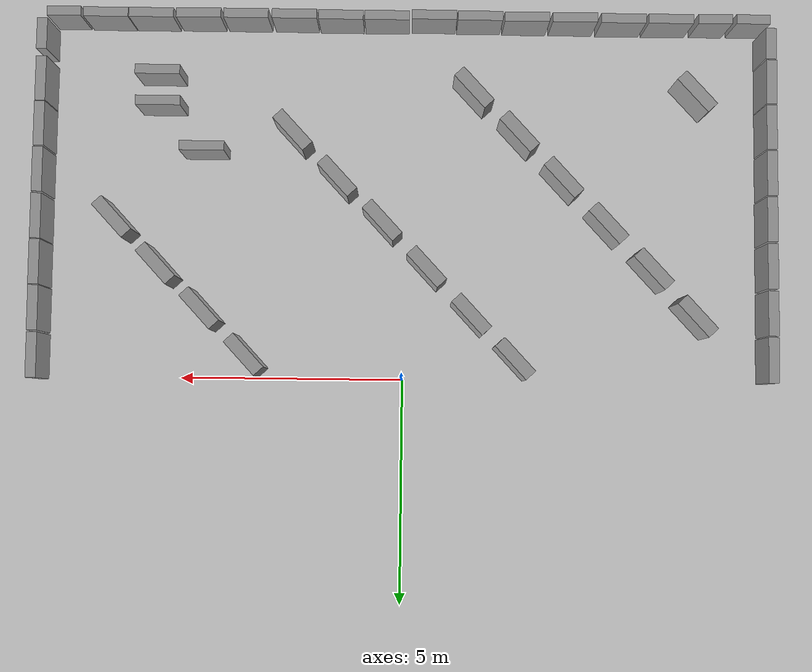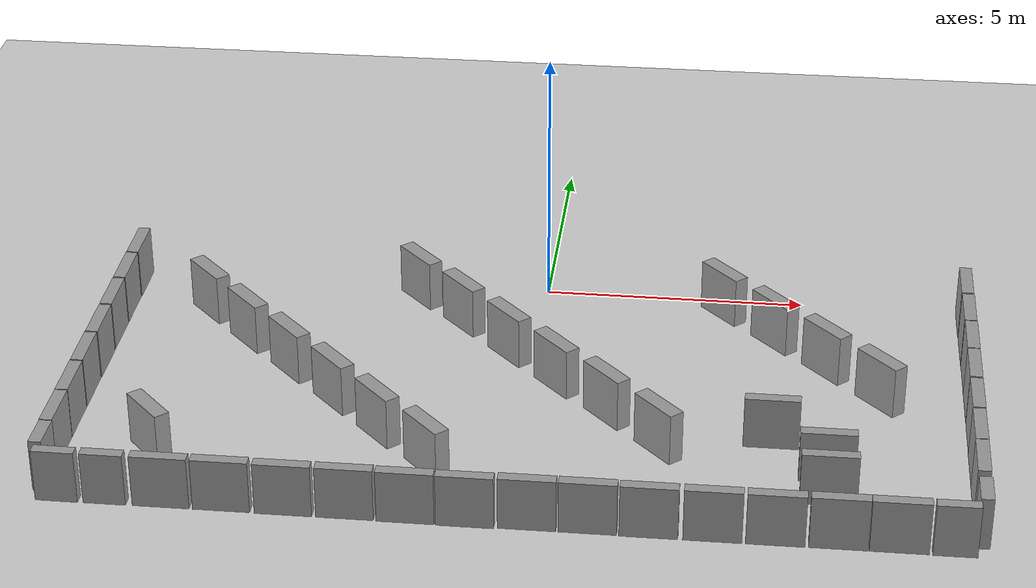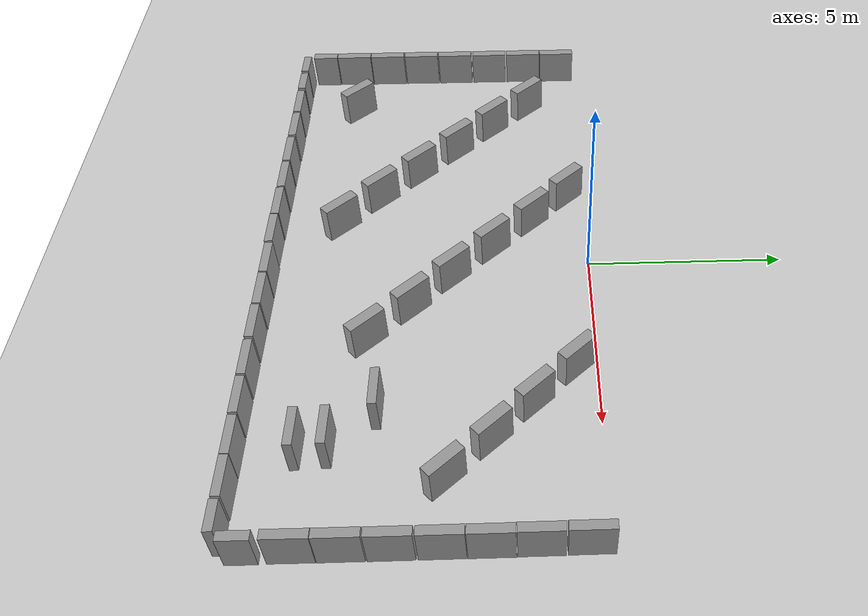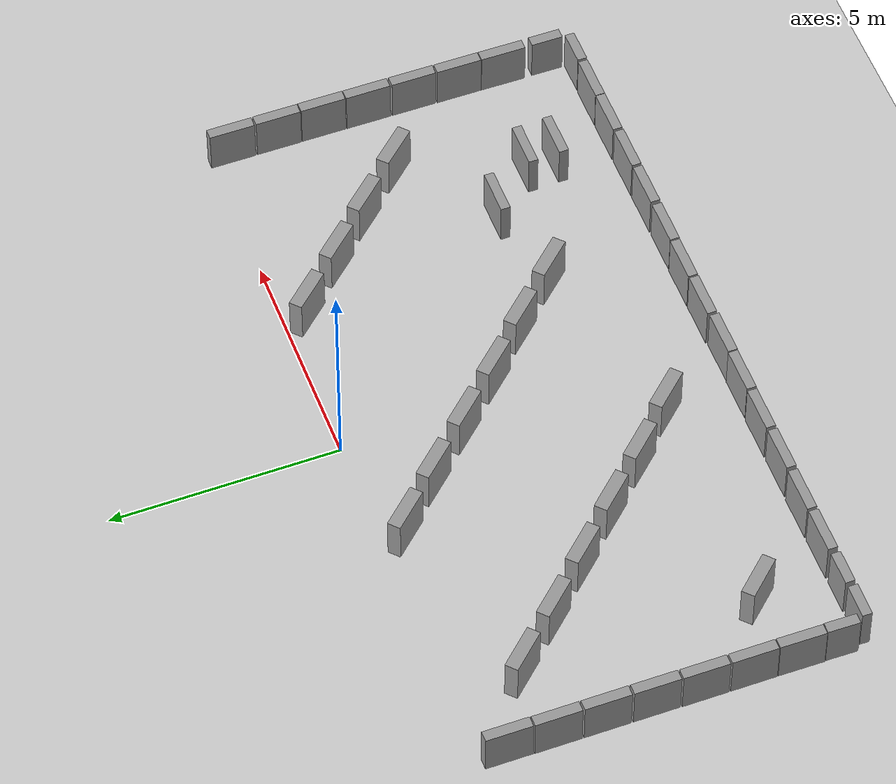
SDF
<sdf version="1.6">
 <world name="default">
  <model name="ground_plane">
   <static>1</static>
   <static>1</static>
   <link name="link">
    <collision name="collision">
     <geometry><plane><normal>0 0 1</normal><size>100 100</size></plane></geometry>
     <surface><friction><ode><mu>100</mu><mu2>50</mu2></ode></friction></surface>
    </collision>
    <visual name="visual">
     <cast_shadows>0</cast_shadows>
     <geometry><plane><normal>0 0 1</normal><size>100 100</size></plane></geometry>
     <material>
      <script><uri>file://media/materials/scripts/gazebo.material</uri><name>Gazebo/Grey</name></script>
     </material>
    </visual>
   </link>
  </model>
  <model name="unit_box_0_clone_7">
   <pose>8.11276 -0.44932 0.5 -1e-06 -1e-06 0.000192</pose>
   <link name="link">
    <inertial>
     <mass>1</mass>
     <inertia>
      <ixx>0.166667</ixx>
      <ixy>0</ixy>
      <ixz>0</ixz>
      <iyy>0.166667</iyy>
      <iyz>0</iyz>
      <izz>0.166667</izz>
     </inertia>
    </inertial>
    <collision name="collision"><geometry><box><size>0.230819 1 1</size></box></geometry></collision>
    <visual name="visual">
     <geometry><box><size>0.230819 1 1</size></box></geometry>
     <material>
      <script><name>Gazebo/Grey</name><uri>file://media/materials/scripts/gazebo.material</uri></script>
     </material>
    </visual>
   </link>
  </model>
  <model name="unit_box_0_clone_8">
   <pose>8.11912 -1.48629 0.5 -1e-06 -1e-06 0.000192</pose>
   <link name="link">
    <inertial>
     <mass>1</mass>
     <inertia>
      <ixx>0.166667</ixx>
      <ixy>0</ixy>
      <ixz>0</ixz>
      <iyy>0.166667</iyy>
      <iyz>0</iyz>
      <izz>0.166667</izz>
     </inertia>
    </inertial>
    <collision name="collision"><geometry><box><size>0.230819 1 1</size></box></geometry></collision>
    <visual name="visual">
     <geometry><box><size>0.230819 1 1</size></box></geometry>
     <material>
      <script><name>Gazebo/Grey</name><uri>file://media/materials/scripts/gazebo.material</uri></script>
     </material>
    </visual>
   </link>
  </model>
  <model name="unit_box_0_clone_9">
   <pose>8.12548 -2.5042 0.5 -1e-06 -1e-06 0.000192</pose>
   <link name="link">
    <inertial>
     <mass>1</mass>
     <inertia>
      <ixx>0.166667</ixx>
      <ixy>0</ixy>
      <ixz>0</ixz>
      <iyy>0.166667</iyy>
      <iyz>0</iyz>
      <izz>0.166667</izz>
     </inertia>
    </inertial>
    <collision name="collision"><geometry><box><size>0.230819 1 1</size></box></geometry></collision>
    <visual name="visual">
     <geometry><box><size>0.230819 1 1</size></box></geometry>
     <material>
      <script><name>Gazebo/Grey</name><uri>file://media/materials/scripts/gazebo.material</uri></script>
     </material>
    </visual>
   </link>
  </model>
  <model name="unit_box_0_clone_10">
   <pose>8.12331 -3.52223 0.5 -1e-06 -1e-06 0.000192</pose>
   <link name="link">
    <inertial>
     <mass>1</mass>
     <inertia>
      <ixx>0.166667</ixx>
      <ixy>0</ixy>
      <ixz>0</ixz>
      <iyy>0.166667</iyy>
      <iyz>0</iyz>
      <izz>0.166667</izz>
     </inertia>
    </inertial>
    <collision name="collision"><geometry><box><size>0.230819 1 1</size></box></geometry></collision>
    <visual name="visual">
     <geometry><box><size>0.230819 1 1</size></box></geometry>
     <material>
      <script><name>Gazebo/Grey</name><uri>file://media/materials/scripts/gazebo.material</uri></script>
     </material>
    </visual>
   </link>
  </model>
  <model name="unit_box_0_clone_11">
   <pose>8.1233 -4.56316 0.5 -1e-06 -1e-06 0.000192</pose>
   <link name="link">
    <inertial>
     <mass>1</mass>
     <inertia>
      <ixx>0.166667</ixx>
      <ixy>0</ixy>
      <ixz>0</ixz>
      <iyy>0.166667</iyy>
      <iyz>0</iyz>
      <izz>0.166667</izz>
     </inertia>
    </inertial>
    <collision name="collision"><geometry><box><size>0.230819 1 1</size></box></geometry></collision>
    <visual name="visual">
     <geometry><box><size>0.230819 1 1</size></box></geometry>
     <material>
      <script><name>Gazebo/Grey</name><uri>file://media/materials/scripts/gazebo.material</uri></script>
     </material>
    </visual>
   </link>
  </model>
  <model name="unit_box_0_clone_12">
   <pose>8.11815 -5.59377 0.5 -1e-06 -1e-06 0.000192</pose>
   <link name="link">
    <inertial>
     <mass>1</mass>
     <inertia>
      <ixx>0.166667</ixx>
      <ixy>0</ixy>
      <ixz>0</ixz>
      <iyy>0.166667</iyy>
      <iyz>0</iyz>
      <izz>0.166667</izz>
     </inertia>
    </inertial>
    <collision name="collision"><geometry><box><size>0.230819 1 1</size></box></geometry></collision>
    <visual name="visual">
     <geometry><box><size>0.230819 1 1</size></box></geometry>
     <material>
      <script><name>Gazebo/Grey</name><uri>file://media/materials/scripts/gazebo.material</uri></script>
     </material>
    </visual>
   </link>
  </model>
  <model name="unit_box_0_clone_13">
   <pose>8.11333 -6.60776 0.5 0 -0 -0.005474</pose>
   <link name="link">
    <inertial>
     <mass>1</mass>
     <inertia>
      <ixx>0.166667</ixx>
      <ixy>0</ixy>
      <ixz>0</ixz>
      <iyy>0.166667</iyy>
      <iyz>0</iyz>
      <izz>0.166667</izz>
     </inertia>
    </inertial>
    <collision name="collision"><geometry><box><size>0.230819 1 1</size></box></geometry></collision>
    <visual name="visual">
     <geometry><box><size>0.230819 1 1</size></box></geometry>
     <material>
      <script><name>Gazebo/Grey</name><uri>file://media/materials/scripts/gazebo.material</uri></script>
     </material>
    </visual>
   </link>
  </model>
  <model name="unit_box_clone_15_clone_0">
   <pose>6.71207 -8.13139 0.5 0 -0 0.00022</pose>
   <link name="link">
    <inertial>
     <mass>1</mass>
     <inertia>
      <ixx>0.166667</ixx>
      <ixy>0</ixy>
      <ixz>0</ixz>
      <iyy>0.166667</iyy>
      <iyz>0</iyz>
      <izz>0.166667</izz>
     </inertia>
    </inertial>
    <collision name="collision"><geometry><box><size>1 0.210541 1</size></box></geometry></collision>
    <visual name="visual">
     <geometry><box><size>1 0.210541 1</size></box></geometry>
     <material>
      <script><name>Gazebo/Grey</name><uri>file://media/materials/scripts/gazebo.material</uri></script>
     </material>
    </visual>
   </link>
  </model>
  <model name="unit_box_clone_15_clone_1">
   <pose>5.69715 -8.13138 0.5 0 -0 0.00022</pose>
   <link name="link">
    <inertial>
     <mass>1</mass>
     <inertia>
      <ixx>0.166667</ixx>
      <ixy>0</ixy>
      <ixz>0</ixz>
      <iyy>0.166667</iyy>
      <iyz>0</iyz>
      <izz>0.166667</izz>
     </inertia>
    </inertial>
    <collision name="collision"><geometry><box><size>1 0.210541 1</size></box></geometry></collision>
    <visual name="visual">
     <geometry><box><size>1 0.210541 1</size></box></geometry>
     <material>
      <script><name>Gazebo/Grey</name><uri>file://media/materials/scripts/gazebo.material</uri></script>
     </material>
    </visual>
   </link>
  </model>
  <model name="unit_box_clone_15_clone_2">
   <pose>4.63881 -8.13757 0.5 0 -0 0.00022</pose>
   <link name="link">
    <inertial>
     <mass>1</mass>
     <inertia>
      <ixx>0.166667</ixx>
      <ixy>0</ixy>
      <ixz>0</ixz>
      <iyy>0.166667</iyy>
      <iyz>0</iyz>
      <izz>0.166667</izz>
     </inertia>
    </inertial>
    <collision name="collision"><geometry><box><size>1 0.210541 1</size></box></geometry></collision>
    <visual name="visual">
     <geometry><box><size>1 0.210541 1</size></box></geometry>
     <material>
      <script><name>Gazebo/Grey</name><uri>file://media/materials/scripts/gazebo.material</uri></script>
     </material>
    </visual>
   </link>
  </model>
  <model name="unit_box_clone_15_clone_3">
   <pose>3.57975 -8.13757 0.5 0 -0 0.00022</pose>
   <link name="link">
    <inertial>
     <mass>1</mass>
     <inertia>
      <ixx>0.166667</ixx>
      <ixy>0</ixy>
      <ixz>0</ixz>
      <iyy>0.166667</iyy>
      <iyz>0</iyz>
      <izz>0.166667</izz>
     </inertia>
    </inertial>
    <collision name="collision"><geometry><box><size>1 0.210541 1</size></box></geometry></collision>
    <visual name="visual">
     <geometry><box><size>1 0.210541 1</size></box></geometry>
     <material>
      <script><name>Gazebo/Grey</name><uri>file://media/materials/scripts/gazebo.material</uri></script>
     </material>
    </visual>
   </link>
  </model>
  <model name="unit_box_clone_15_clone_4">
   <pose>2.49815 -8.13756 0.5 0 -0 0.00022</pose>
   <link name="link">
    <inertial>
     <mass>1</mass>
     <inertia>
      <ixx>0.166667</ixx>
      <ixy>0</ixy>
      <ixz>0</ixz>
      <iyy>0.166667</iyy>
      <iyz>0</iyz>
      <izz>0.166667</izz>
     </inertia>
    </inertial>
    <collision name="collision"><geometry><box><size>1 0.210541 1</size></box></geometry></collision>
    <visual name="visual">
     <geometry><box><size>1 0.210541 1</size></box></geometry>
     <material>
      <script><name>Gazebo/Grey</name><uri>file://media/materials/scripts/gazebo.material</uri></script>
     </material>
    </visual>
   </link>
  </model>
  <model name="unit_box_clone_15_clone_5">
   <pose>1.46162 -8.12628 0.5 0 -0 0.00022</pose>
   <link name="link">
    <inertial>
     <mass>1</mass>
     <inertia>
      <ixx>0.166667</ixx>
      <ixy>0</ixy>
      <ixz>0</ixz>
      <iyy>0.166667</iyy>
      <iyz>0</iyz>
      <izz>0.166667</izz>
     </inertia>
    </inertial>
    <collision name="collision"><geometry><box><size>1 0.210541 1</size></box></geometry></collision>
    <visual name="visual">
     <geometry><box><size>1 0.210541 1</size></box></geometry>
     <material>
      <script><name>Gazebo/Grey</name><uri>file://media/materials/scripts/gazebo.material</uri></script>
     </material>
    </visual>
   </link>
  </model>
  <model name="unit_box_clone_15_clone_6">
   <pose>0.425088 -8.12627 0.5 0 -0 0.00022</pose>
   <link name="link">
    <inertial>
     <mass>1</mass>
     <inertia>
      <ixx>0.166667</ixx>
      <ixy>0</ixy>
      <ixz>0</ixz>
      <iyy>0.166667</iyy>
      <iyz>0</iyz>
      <izz>0.166667</izz>
     </inertia>
    </inertial>
    <collision name="collision"><geometry><box><size>1 0.210541 1</size></box></geometry></collision>
    <visual name="visual">
     <geometry><box><size>1 0.210541 1</size></box></geometry>
     <material>
      <script><name>Gazebo/Grey</name><uri>file://media/materials/scripts/gazebo.material</uri></script>
     </material>
    </visual>
   </link>
  </model>
  <model name="unit_box_clone_15_clone_7">
   <pose>-0.633974 -8.14883 0.5 0 -0 0.00022</pose>
   <link name="link">
    <inertial>
     <mass>1</mass>
     <inertia>
      <ixx>0.166667</ixx>
      <ixy>0</ixy>
      <ixz>0</ixz>
      <iyy>0.166667</iyy>
      <iyz>0</iyz>
      <izz>0.166667</izz>
     </inertia>
    </inertial>
    <collision name="collision"><geometry><box><size>1 0.210541 1</size></box></geometry></collision>
    <visual name="visual">
     <geometry><box><size>1 0.210541 1</size></box></geometry>
     <material>
      <script><name>Gazebo/Grey</name><uri>file://media/materials/scripts/gazebo.material</uri></script>
     </material>
    </visual>
   </link>
  </model>
  <model name="unit_box_clone_15_clone_8">
   <pose>-1.65923 -8.13754 0.5 0 -0 0.00022</pose>
   <link name="link">
    <inertial>
     <mass>1</mass>
     <inertia>
      <ixx>0.166667</ixx>
      <ixy>0</ixy>
      <ixz>0</ixz>
      <iyy>0.166667</iyy>
      <iyz>0</iyz>
      <izz>0.166667</izz>
     </inertia>
    </inertial>
    <collision name="collision"><geometry><box><size>1 0.210541 1</size></box></geometry></collision>
    <visual name="visual">
     <geometry><box><size>1 0.210541 1</size></box></geometry>
     <material>
      <script><name>Gazebo/Grey</name><uri>file://media/materials/scripts/gazebo.material</uri></script>
     </material>
    </visual>
   </link>
  </model>
  <model name="unit_box_clone_15_clone_9">
   <pose>-2.70703 -8.1263 0.5 0 -0 0.00022</pose>
   <link name="link">
    <inertial>
     <mass>1</mass>
     <inertia>
      <ixx>0.166667</ixx>
      <ixy>0</ixy>
      <ixz>0</ixz>
      <iyy>0.166667</iyy>
      <iyz>0</iyz>
      <izz>0.166667</izz>
     </inertia>
    </inertial>
    <collision name="collision"><geometry><box><size>1 0.210541 1</size></box></geometry></collision>
    <visual name="visual">
     <geometry><box><size>1 0.210541 1</size></box></geometry>
     <material>
      <script><name>Gazebo/Grey</name><uri>file://media/materials/scripts/gazebo.material</uri></script>
     </material>
    </visual>
   </link>
  </model>
  <model name="unit_box_clone_15_clone_10">
   <pose>-3.77736 -8.12628 0.5 0 -0 0.00022</pose>
   <link name="link">
    <inertial>
     <mass>1</mass>
     <inertia>
      <ixx>0.166667</ixx>
      <ixy>0</ixy>
      <ixz>0</ixz>
      <iyy>0.166667</iyy>
      <iyz>0</iyz>
      <izz>0.166667</izz>
     </inertia>
    </inertial>
    <collision name="collision"><geometry><box><size>1 0.210541 1</size></box></geometry></collision>
    <visual name="visual">
     <geometry><box><size>1 0.210541 1</size></box></geometry>
     <material>
      <script><name>Gazebo/Grey</name><uri>file://media/materials/scripts/gazebo.material</uri></script>
     </material>
    </visual>
   </link>
  </model>
  <model name="unit_box_clone_15_clone_11">
   <pose>-4.85896 -8.11502 0.5 0 -0 0.00022</pose>
   <link name="link">
    <inertial>
     <mass>1</mass>
     <inertia>
      <ixx>0.166667</ixx>
      <ixy>0</ixy>
      <ixz>0</ixz>
      <iyy>0.166667</iyy>
      <iyz>0</iyz>
      <izz>0.166667</izz>
     </inertia>
    </inertial>
    <collision name="collision"><geometry><box><size>1 0.210541 1</size></box></geometry></collision>
    <visual name="visual">
     <geometry><box><size>1 0.210541 1</size></box></geometry>
     <material>
      <script><name>Gazebo/Grey</name><uri>file://media/materials/scripts/gazebo.material</uri></script>
     </material>
    </visual>
   </link>
  </model>
  <model name="unit_box_clone_15_clone_12">
   <pose>-5.91802 -8.11501 0.5 0 -0 0.00022</pose>
   <link name="link">
    <inertial>
     <mass>1</mass>
     <inertia>
      <ixx>0.166667</ixx>
      <ixy>0</ixy>
      <ixz>0</ixz>
      <iyy>0.166667</iyy>
      <iyz>0</iyz>
      <izz>0.166667</izz>
     </inertia>
    </inertial>
    <collision name="collision"><geometry><box><size>1 0.210541 1</size></box></geometry></collision>
    <visual name="visual">
     <geometry><box><size>1 0.210541 1</size></box></geometry>
     <material>
      <script><name>Gazebo/Grey</name><uri>file://media/materials/scripts/gazebo.material</uri></script>
     </material>
    </visual>
   </link>
  </model>
  <model name="unit_box_0_clone_4_clone_7">
   <pose>-8.12609 -0.518034 0.5 -1e-06 -1e-06 0.000192</pose>
   <link name="link">
    <inertial>
     <mass>1</mass>
     <inertia>
      <ixx>0.166667</ixx>
      <ixy>0</ixy>
      <ixz>0</ixz>
      <iyy>0.166667</iyy>
      <iyz>0</iyz>
      <izz>0.166667</izz>
     </inertia>
    </inertial>
    <collision name="collision"><geometry><box><size>0.230819 1 1</size></box></geometry></collision>
    <visual name="visual">
     <geometry><box><size>0.230819 1 1</size></box></geometry>
     <material>
      <script><name>Gazebo/Grey</name><uri>file://media/materials/scripts/gazebo.material</uri></script>
     </material>
    </visual>
   </link>
  </model>
  <model name="unit_box_0_clone_4_clone_8">
   <pose>-8.13284 -1.54445 0.5 -1e-06 -1e-06 0.000192</pose>
   <link name="link">
    <inertial>
     <mass>1</mass>
     <inertia>
      <ixx>0.166667</ixx>
      <ixy>0</ixy>
      <ixz>0</ixz>
      <iyy>0.166667</iyy>
      <iyz>0</iyz>
      <izz>0.166667</izz>
     </inertia>
    </inertial>
    <collision name="collision"><geometry><box><size>0.230819 1 1</size></box></geometry></collision>
    <visual name="visual">
     <geometry><box><size>0.230819 1 1</size></box></geometry>
     <material>
      <script><name>Gazebo/Grey</name><uri>file://media/materials/scripts/gazebo.material</uri></script>
     </material>
    </visual>
   </link>
  </model>
  <model name="unit_box_0_clone_4_clone_9">
   <pose>-8.13285 -2.58439 0.5 -1e-06 -1e-06 0.000192</pose>
   <link name="link">
    <inertial>
     <mass>1</mass>
     <inertia>
      <ixx>0.166667</ixx>
      <ixy>0</ixy>
      <ixz>0</ixz>
      <iyy>0.166667</iyy>
      <iyz>0</iyz>
      <izz>0.166667</izz>
     </inertia>
    </inertial>
    <collision name="collision"><geometry><box><size>0.230819 1 1</size></box></geometry></collision>
    <visual name="visual">
     <geometry><box><size>0.230819 1 1</size></box></geometry>
     <material>
      <script><name>Gazebo/Grey</name><uri>file://media/materials/scripts/gazebo.material</uri></script>
     </material>
    </visual>
   </link>
  </model>
  <model name="unit_box_0_clone_4_clone_10">
   <pose>-8.13285 -3.62431 0.5 -1e-06 -1e-06 0.000192</pose>
   <link name="link">
    <inertial>
     <mass>1</mass>
     <inertia>
      <ixx>0.166667</ixx>
      <ixy>0</ixy>
      <ixz>0</ixz>
      <iyy>0.166667</iyy>
      <iyz>0</iyz>
      <izz>0.166667</izz>
     </inertia>
    </inertial>
    <collision name="collision"><geometry><box><size>0.230819 1 1</size></box></geometry></collision>
    <visual name="visual">
     <geometry><box><size>0.230819 1 1</size></box></geometry>
     <material>
      <script><name>Gazebo/Grey</name><uri>file://media/materials/scripts/gazebo.material</uri></script>
     </material>
    </visual>
   </link>
  </model>
  <model name="unit_box_0_clone_4_clone_11">
   <pose>-8.1396 -4.65747 0.5 -1e-06 -1e-06 0.000192</pose>
   <link name="link">
    <inertial>
     <mass>1</mass>
     <inertia>
      <ixx>0.166667</ixx>
      <ixy>0</ixy>
      <ixz>0</ixz>
      <iyy>0.166667</iyy>
      <iyz>0</iyz>
      <izz>0.166667</izz>
     </inertia>
    </inertial>
    <collision name="collision"><geometry><box><size>0.230819 1 1</size></box></geometry></collision>
    <visual name="visual">
     <geometry><box><size>0.230819 1 1</size></box></geometry>
     <material>
      <script><name>Gazebo/Grey</name><uri>file://media/materials/scripts/gazebo.material</uri></script>
     </material>
    </visual>
   </link>
  </model>
  <model name="unit_box_0_clone_4_clone_12">
   <pose>-8.1396 -5.69064 0.5 -1e-06 -1e-06 0.000192</pose>
   <link name="link">
    <inertial>
     <mass>1</mass>
     <inertia>
      <ixx>0.166667</ixx>
      <ixy>0</ixy>
      <ixz>0</ixz>
      <iyy>0.166667</iyy>
      <iyz>0</iyz>
      <izz>0.166667</izz>
     </inertia>
    </inertial>
    <collision name="collision"><geometry><box><size>0.230819 1 1</size></box></geometry></collision>
    <visual name="visual">
     <geometry><box><size>0.230819 1 1</size></box></geometry>
     <material>
      <script><name>Gazebo/Grey</name><uri>file://media/materials/scripts/gazebo.material</uri></script>
     </material>
    </visual>
   </link>
  </model>
  <model name="unit_box_0_clone_4_clone_13">
   <pose>-8.14113 -6.70874 0.5 -0 -0 -0.008564</pose>
   <link name="link">
    <inertial>
     <mass>1</mass>
     <inertia>
      <ixx>0.166667</ixx>
      <ixy>0</ixy>
      <ixz>0</ixz>
      <iyy>0.166667</iyy>
      <iyz>0</iyz>
      <izz>0.166667</izz>
     </inertia>
    </inertial>
    <collision name="collision"><geometry><box><size>0.230819 1 1</size></box></geometry></collision>
    <visual name="visual">
     <geometry><box><size>0.230819 1 1</size></box></geometry>
     <material>
      <script><name>Gazebo/Grey</name><uri>file://media/materials/scripts/gazebo.material</uri></script>
     </material>
    </visual>
   </link>
  </model>
  <model name="unit_box_clone_11_clone_1_clone_0">
   <pose>-6.90881 -8.11957 0.499997 2e-06 -7e-06 -0.003389</pose>
   <link name="link">
    <inertial>
     <mass>1</mass>
     <inertia>
      <ixx>0.166667</ixx>
      <ixy>0</ixy>
      <ixz>0</ixz>
      <iyy>0.166667</iyy>
      <iyz>0</iyz>
      <izz>0.166667</izz>
     </inertia>
    </inertial>
    <collision name="collision"><geometry><box><size>0.750223 0.210541 1</size></box></geometry></collision>
    <visual name="visual">
     <geometry><box><size>0.750223 0.210541 1</size></box></geometry>
     <material>
      <script><name>Gazebo/Grey</name><uri>file://media/materials/scripts/gazebo.material</uri></script>
     </material>
    </visual>
   </link>
  </model>
  <model name="unit_box_0_clone_4_clone_13_clone_clone">
   <pose>-8.13833 -7.57661 0.499997 7e-06 2e-06 -0.015836</pose>
   <link name="link">
    <inertial>
     <mass>1</mass>
     <inertia>
      <ixx>0.166667</ixx>
      <ixy>0</ixy>
      <ixz>0</ixz>
      <iyy>0.166667</iyy>
      <iyz>0</iyz>
      <izz>0.166667</izz>
     </inertia>
    </inertial>
    <collision name="collision"><geometry><box><size>0.230819 0.700336 1</size></box></geometry></collision>
    <visual name="visual">
     <geometry><box><size>0.230819 0.700336 1</size></box></geometry>
     <material>
      <script><name>Gazebo/Grey</name><uri>file://media/materials/scripts/gazebo.material</uri></script>
     </material>
    </visual>
   </link>
  </model>
  <model name="unit_box_clone_11_clone_1_clone_0_clone">
   <pose>-7.75475 -8.122 0.5 0 -1e-06 -0.009109</pose>
   <link name="link">
    <inertial>
     <mass>1</mass>
     <inertia>
      <ixx>0.166667</ixx>
      <ixy>0</ixy>
      <ixz>0</ixz>
      <iyy>0.166667</iyy>
      <iyz>0</iyz>
      <izz>0.166667</izz>
     </inertia>
    </inertial>
    <collision name="collision"><geometry><box><size>0.750223 0.210541 1</size></box></geometry></collision>
    <visual name="visual">
     <geometry><box><size>0.750223 0.210541 1</size></box></geometry>
     <material>
      <script><name>Gazebo/Grey</name><uri>file://media/materials/scripts/gazebo.material</uri></script>
     </material>
    </visual>
   </link>
  </model>
  <model name="unit_box_clone_11_clone_1_clone_2">
   <pose>7.64248 -8.13928 0.500001 1e-06 1e-06 0.005211</pose>
   <link name="link">
    <inertial>
     <mass>1</mass>
     <inertia>
      <ixx>0.166667</ixx>
      <ixy>0</ixy>
      <ixz>0</ixz>
      <iyy>0.166667</iyy>
      <iyz>0</iyz>
      <izz>0.166667</izz>
     </inertia>
    </inertial>
    <collision name="collision"><geometry><box><size>0.750223 0.210541 1</size></box></geometry></collision>
    <visual name="visual">
     <geometry><box><size>0.750223 0.210541 1</size></box></geometry>
     <material>
      <script><name>Gazebo/Grey</name><uri>file://media/materials/scripts/gazebo.material</uri></script>
     </material>
    </visual>
   </link>
  </model>
  <model name="unit_box_0_clone_4_clone_13_clone_clone_clone">
   <pose>8.11858 -7.62155 0.499997 -8e-06 3e-06 -0.004333</pose>
   <link name="link">
    <inertial>
     <mass>1</mass>
     <inertia>
      <ixx>0.166667</ixx>
      <ixy>0</ixy>
      <ixz>0</ixz>
      <iyy>0.166667</iyy>
      <iyz>0</iyz>
      <izz>0.166667</izz>
     </inertia>
    </inertial>
    <collision name="collision"><geometry><box><size>0.230819 0.700336 1</size></box></geometry></collision>
    <visual name="visual">
     <geometry><box><size>0.230819 0.700336 1</size></box></geometry>
     <material>
      <script><name>Gazebo/Grey</name><uri>file://media/materials/scripts/gazebo.material</uri></script>
     </material>
    </visual>
   </link>
  </model>
  <model name="unit_box_clone_5_clone_clone_0_clone_0">
   <pose>-2.4798 -0.485932 0.5 -0 -0 -0.824461</pose>
   <link name="link">
    <inertial>
     <mass>1</mass>
     <inertia>
      <ixx>0.166667</ixx>
      <ixy>0</ixy>
      <ixz>0</ixz>
      <iyy>0.166667</iyy>
      <iyz>0</iyz>
      <izz>0.166667</izz>
     </inertia>
    </inertial>
    <collision name="collision"><geometry><box><size>1 0.290155 1</size></box></geometry></collision>
    <visual name="visual">
     <geometry><box><size>1 0.290155 1</size></box></geometry>
     <material>
      <script><name>Gazebo/Grey</name><uri>file://media/materials/scripts/gazebo.material</uri></script>
     </material>
    </visual>
   </link>
  </model>
  <model name="unit_box_clone_5_clone_clone_0_clone_1">
   <pose>-1.51478 -1.45091 0.499995 -1e-06 -1e-05 -0.824569</pose>
   <link name="link">
    <inertial>
     <mass>1</mass>
     <inertia>
      <ixx>0.166667</ixx>
      <ixy>0</ixy>
      <ixz>0</ixz>
      <iyy>0.166667</iyy>
      <iyz>0</iyz>
      <izz>0.166667</izz>
     </inertia>
    </inertial>
    <collision name="collision"><geometry><box><size>1 0.290155 1</size></box></geometry></collision>
    <visual name="visual">
     <geometry><box><size>1 0.290155 1</size></box></geometry>
     <material>
      <script><name>Gazebo/Grey</name><uri>file://media/materials/scripts/gazebo.material</uri></script>
     </material>
    </visual>
   </link>
  </model>
  <model name="unit_box_clone_5_clone_clone_0_clone_2">
   <pose>-0.518261 -2.48836 0.5 0 0 -0.824588</pose>
   <link name="link">
    <inertial>
     <mass>1</mass>
     <inertia>
      <ixx>0.166667</ixx>
      <ixy>0</ixy>
      <ixz>0</ixz>
      <iyy>0.166667</iyy>
      <iyz>0</iyz>
      <izz>0.166667</izz>
     </inertia>
    </inertial>
    <collision name="collision"><geometry><box><size>1 0.290155 1</size></box></geometry></collision>
    <visual name="visual">
     <geometry><box><size>1 0.290155 1</size></box></geometry>
     <material>
      <script><name>Gazebo/Grey</name><uri>file://media/materials/scripts/gazebo.material</uri></script>
     </material>
    </visual>
   </link>
  </model>
  <model name="unit_box_clone_5_clone_clone_0_clone_3">
   <pose>0.4768 -3.50895 0.5 -0 -0 -0.82466</pose>
   <link name="link">
    <inertial>
     <mass>1</mass>
     <inertia>
      <ixx>0.166667</ixx>
      <ixy>0</ixy>
      <ixz>0</ixz>
      <iyy>0.166667</iyy>
      <iyz>0</iyz>
      <izz>0.166667</izz>
     </inertia>
    </inertial>
    <collision name="collision"><geometry><box><size>1 0.290155 1</size></box></geometry></collision>
    <visual name="visual">
     <geometry><box><size>1 0.290155 1</size></box></geometry>
     <material>
      <script><name>Gazebo/Grey</name><uri>file://media/materials/scripts/gazebo.material</uri></script>
     </material>
    </visual>
   </link>
  </model>
  <model name="unit_box_clone_5_clone_clone_0_clone_4">
   <pose>1.48885 -4.48702 0.499996 2e-06 7e-06 -0.824737</pose>
   <link name="link">
    <inertial>
     <mass>1</mass>
     <inertia>
      <ixx>0.166667</ixx>
      <ixy>0</ixy>
      <ixz>0</ixz>
      <iyy>0.166667</iyy>
      <iyz>0</iyz>
      <izz>0.166667</izz>
     </inertia>
    </inertial>
    <collision name="collision"><geometry><box><size>1 0.290155 1</size></box></geometry></collision>
    <visual name="visual">
     <geometry><box><size>1 0.290155 1</size></box></geometry>
     <material>
      <script><name>Gazebo/Grey</name><uri>file://media/materials/scripts/gazebo.material</uri></script>
     </material>
    </visual>
   </link>
  </model>
  <model name="unit_box_clone_5_clone_clone_0_clone_5">
   <pose>2.49244 -5.5076 0.5 0 0 -0.824771</pose>
   <link name="link">
    <inertial>
     <mass>1</mass>
     <inertia>
      <ixx>0.166667</ixx>
      <ixy>0</ixy>
      <ixz>0</ixz>
      <iyy>0.166667</iyy>
      <iyz>0</iyz>
      <izz>0.166667</izz>
     </inertia>
    </inertial>
    <collision name="collision"><geometry><box><size>1 0.290155 1</size></box></geometry></collision>
    <visual name="visual">
     <geometry><box><size>1 0.290155 1</size></box></geometry>
     <material>
      <script><name>Gazebo/Grey</name><uri>file://media/materials/scripts/gazebo.material</uri></script>
     </material>
    </visual>
   </link>
  </model>
  <model name="unit_box_clone_5_clone_clone_0_clone_15">
   <pose>3.47447 -0.511851 0.5 -0 -0 -0.8254</pose>
   <link name="link">
    <inertial>
     <mass>1</mass>
     <inertia>
      <ixx>0.166667</ixx>
      <ixy>0</ixy>
      <ixz>0</ixz>
      <iyy>0.166667</iyy>
      <iyz>0</iyz>
      <izz>0.166667</izz>
     </inertia>
    </inertial>
    <collision name="collision"><geometry><box><size>1 0.290155 1</size></box></geometry></collision>
    <visual name="visual">
     <geometry><box><size>1 0.290155 1</size></box></geometry>
     <material>
      <script><name>Gazebo/Grey</name><uri>file://media/materials/scripts/gazebo.material</uri></script>
     </material>
    </visual>
   </link>
  </model>
  <model name="unit_box_clone_5_clone_clone_0_clone_16">
   <pose>4.47452 -1.51939 0.5 0 0 -0.825459</pose>
   <link name="link">
    <inertial>
     <mass>1</mass>
     <inertia>
      <ixx>0.166667</ixx>
      <ixy>0</ixy>
      <ixz>0</ixz>
      <iyy>0.166667</iyy>
      <iyz>0</iyz>
      <izz>0.166667</izz>
     </inertia>
    </inertial>
    <collision name="collision"><geometry><box><size>1 0.290155 1</size></box></geometry></collision>
    <visual name="visual">
     <geometry><box><size>1 0.290155 1</size></box></geometry>
     <material>
      <script><name>Gazebo/Grey</name><uri>file://media/materials/scripts/gazebo.material</uri></script>
     </material>
    </visual>
   </link>
  </model>
  <model name="unit_box_clone_5_clone_clone_0_clone_17">
   <pose>5.45964 -2.49708 0.499996 2e-06 7e-06 -0.825547</pose>
   <link name="link">
    <inertial>
     <mass>1</mass>
     <inertia>
      <ixx>0.166667</ixx>
      <ixy>0</ixy>
      <ixz>0</ixz>
      <iyy>0.166667</iyy>
      <iyz>0</iyz>
      <izz>0.166667</izz>
     </inertia>
    </inertial>
    <collision name="collision"><geometry><box><size>1 0.290155 1</size></box></geometry></collision>
    <visual name="visual">
     <geometry><box><size>1 0.290155 1</size></box></geometry>
     <material>
      <script><name>Gazebo/Grey</name><uri>file://media/materials/scripts/gazebo.material</uri></script>
     </material>
    </visual>
   </link>
  </model>
  <model name="unit_box_clone_5_clone_clone_0_clone_18">
   <pose>6.45225 -3.51952 0.499996 -1e-06 -9e-06 -0.825581</pose>
   <link name="link">
    <inertial>
     <mass>1</mass>
     <inertia>
      <ixx>0.166667</ixx>
      <ixy>0</ixy>
      <ixz>0</ixz>
      <iyy>0.166667</iyy>
      <iyz>0</iyz>
      <izz>0.166667</izz>
     </inertia>
    </inertial>
    <collision name="collision"><geometry><box><size>1 0.290155 1</size></box></geometry></collision>
    <visual name="visual">
     <geometry><box><size>1 0.290155 1</size></box></geometry>
     <material>
      <script><name>Gazebo/Grey</name><uri>file://media/materials/scripts/gazebo.material</uri></script>
     </material>
    </visual>
   </link>
  </model>
  <model name="unit_box_clone_5_clone_clone_0_clone_19">
   <pose>-5.52106 -2.49856 0.499995 1e-06 1e-05 -0.825699</pose>
   <link name="link">
    <inertial>
     <mass>1</mass>
     <inertia>
      <ixx>0.166667</ixx>
      <ixy>0</ixy>
      <ixz>0</ixz>
      <iyy>0.166667</iyy>
      <iyz>0</iyz>
      <izz>0.166667</izz>
     </inertia>
    </inertial>
    <collision name="collision"><geometry><box><size>1 0.290155 1</size></box></geometry></collision>
    <visual name="visual">
     <geometry><box><size>1 0.290155 1</size></box></geometry>
     <material>
      <script><name>Gazebo/Grey</name><uri>file://media/materials/scripts/gazebo.material</uri></script>
     </material>
    </visual>
   </link>
  </model>
  <model name="unit_box_clone_5_clone_clone_0_clone_20">
   <pose>-4.52683 -3.50154 0.5 -0 -0 -0.825722</pose>
   <link name="link">
    <inertial>
     <mass>1</mass>
     <inertia>
      <ixx>0.166667</ixx>
      <ixy>0</ixy>
      <ixz>0</ixz>
      <iyy>0.166667</iyy>
      <iyz>0</iyz>
      <izz>0.166667</izz>
     </inertia>
    </inertial>
    <collision name="collision"><geometry><box><size>1 0.290155 1</size></box></geometry></collision>
    <visual name="visual">
     <geometry><box><size>1 0.290155 1</size></box></geometry>
     <material>
      <script><name>Gazebo/Grey</name><uri>file://media/materials/scripts/gazebo.material</uri></script>
     </material>
    </visual>
   </link>
  </model>
  <model name="unit_box_clone_5_clone_clone_0_clone_21">
   <pose>-3.53281 -4.51214 0.5 0 0 -0.825779</pose>
   <link name="link">
    <inertial>
     <mass>1</mass>
     <inertia>
      <ixx>0.166667</ixx>
      <ixy>0</ixy>
      <ixz>0</ixz>
      <iyy>0.166667</iyy>
      <iyz>0</iyz>
      <izz>0.166667</izz>
     </inertia>
    </inertial>
    <collision name="collision"><geometry><box><size>1 0.290155 1</size></box></geometry></collision>
    <visual name="visual">
     <geometry><box><size>1 0.290155 1</size></box></geometry>
     <material>
      <script><name>Gazebo/Grey</name><uri>file://media/materials/scripts/gazebo.material</uri></script>
     </material>
    </visual>
   </link>
  </model>
  <model name="unit_box_clone_5_clone_clone_0_clone_22">
   <pose>-2.54984 -5.52826 0.5 0 0 -0.825837</pose>
   <link name="link">
    <inertial>
     <mass>1</mass>
     <inertia>
      <ixx>0.166667</ixx>
      <ixy>0</ixy>
      <ixz>0</ixz>
      <iyy>0.166667</iyy>
      <iyz>0</iyz>
      <izz>0.166667</izz>
     </inertia>
    </inertial>
    <collision name="collision"><geometry><box><size>1 0.290155 1</size></box></geometry></collision>
    <visual name="visual">
     <geometry><box><size>1 0.290155 1</size></box></geometry>
     <material>
      <script><name>Gazebo/Grey</name><uri>file://media/materials/scripts/gazebo.material</uri></script>
     </material>
    </visual>
   </link>
  </model>
  <model name="unit_box_clone_5_clone_clone_0_clone_23">
   <pose>-1.53467 -6.50769 0.5 -0 -0 -0.825896</pose>
   <link name="link">
    <inertial>
     <mass>1</mass>
     <inertia>
      <ixx>0.166667</ixx>
      <ixy>0</ixy>
      <ixz>0</ixz>
      <iyy>0.166667</iyy>
      <iyz>0</iyz>
      <izz>0.166667</izz>
     </inertia>
    </inertial>
    <collision name="collision"><geometry><box><size>1 0.290155 1</size></box></geometry></collision>
    <visual name="visual">
     <geometry><box><size>1 0.290155 1</size></box></geometry>
     <material>
      <script><name>Gazebo/Grey</name><uri>file://media/materials/scripts/gazebo.material</uri></script>
     </material>
    </visual>
   </link>
  </model>
  <model name="unit_box_clone_5_clone_clone_0_clone_24">
   <pose>-6.482 -1.46574 0.499996 -2e-06 -7e-06 -0.825984</pose>
   <link name="link">
    <inertial>
     <mass>1</mass>
     <inertia>
      <ixx>0.166667</ixx>
      <ixy>0</ixy>
      <ixz>0</ixz>
      <iyy>0.166667</iyy>
      <iyz>0</iyz>
      <izz>0.166667</izz>
     </inertia>
    </inertial>
    <collision name="collision"><geometry><box><size>1 0.290155 1</size></box></geometry></collision>
    <visual name="visual">
     <geometry><box><size>1 0.290155 1</size></box></geometry>
     <material>
      <script><name>Gazebo/Grey</name><uri>file://media/materials/scripts/gazebo.material</uri></script>
     </material>
    </visual>
   </link>
  </model>
  <model name="unit_box_clone_5_clone_clone_0_clone_25">
   <pose>-6.4978 -6.47615 0.499996 1e-06 9e-06 -0.826018</pose>
   <link name="link">
    <inertial>
     <mass>1</mass>
     <inertia>
      <ixx>0.166667</ixx>
      <ixy>0</ixy>
      <ixz>0</ixz>
      <iyy>0.166667</iyy>
      <iyz>0</iyz>
      <izz>0.166667</izz>
     </inertia>
    </inertial>
    <collision name="collision"><geometry><box><size>1 0.290155 1</size></box></geometry></collision>
    <visual name="visual">
     <geometry><box><size>1 0.290155 1</size></box></geometry>
     <material>
      <script><name>Gazebo/Grey</name><uri>file://media/materials/scripts/gazebo.material</uri></script>
     </material>
    </visual>
   </link>
  </model>
  <model name="unit_box_clone_1_clone_1">
   <pose>4.49916 -5.12891 0.5 0 0 -0.002309</pose>
   <link name="link">
    <inertial>
     <mass>1</mass>
     <inertia>
      <ixx>0.166667</ixx>
      <ixy>0</ixy>
      <ixz>0</ixz>
      <iyy>0.166667</iyy>
      <iyz>0</iyz>
      <izz>0.166667</izz>
     </inertia>
    </inertial>
    <collision name="collision"><geometry><box><size>1 0.210541 1</size></box></geometry></collision>
    <visual name="visual">
     <geometry><box><size>1 0.210541 1</size></box></geometry>
     <material>
      <script><name>Gazebo/Grey</name><uri>file://media/materials/scripts/gazebo.material</uri></script>
     </material>
    </visual>
   </link>
  </model>
  <model name="unit_box_clone_1_clone_2">
   <pose>5.49674 -6.13998 0.499999 1e-06 2e-06 -0.002362</pose>
   <link name="link">
    <inertial>
     <mass>1</mass>
     <inertia>
      <ixx>0.166667</ixx>
      <ixy>0</ixy>
      <ixz>0</ixz>
      <iyy>0.166667</iyy>
      <iyz>0</iyz>
      <izz>0.166667</izz>
     </inertia>
    </inertial>
    <collision name="collision"><geometry><box><size>1 0.210541 1</size></box></geometry></collision>
    <visual name="visual">
     <geometry><box><size>1 0.210541 1</size></box></geometry>
     <material>
      <script><name>Gazebo/Grey</name><uri>file://media/materials/scripts/gazebo.material</uri></script>
     </material>
    </visual>
   </link>
  </model>
  <model name="unit_box_clone_1_clone_3">
   <pose>5.5237 -6.84094 0.5 -0 -0 -0.002346</pose>
   <link name="link">
    <inertial>
     <mass>1</mass>
     <inertia>
      <ixx>0.166667</ixx>
      <ixy>0</ixy>
      <ixz>0</ixz>
      <iyy>0.166667</iyy>
      <iyz>0</iyz>
      <izz>0.166667</izz>
     </inertia>
    </inertial>
    <collision name="collision"><geometry><box><size>1 0.210541 1</size></box></geometry></collision>
    <visual name="visual">
     <geometry><box><size>1 0.210541 1</size></box></geometry>
     <material>
      <script><name>Gazebo/Grey</name><uri>file://media/materials/scripts/gazebo.material</uri></script>
     </material>
    </visual>
   </link>
  </model>
 </world>
</sdf>
